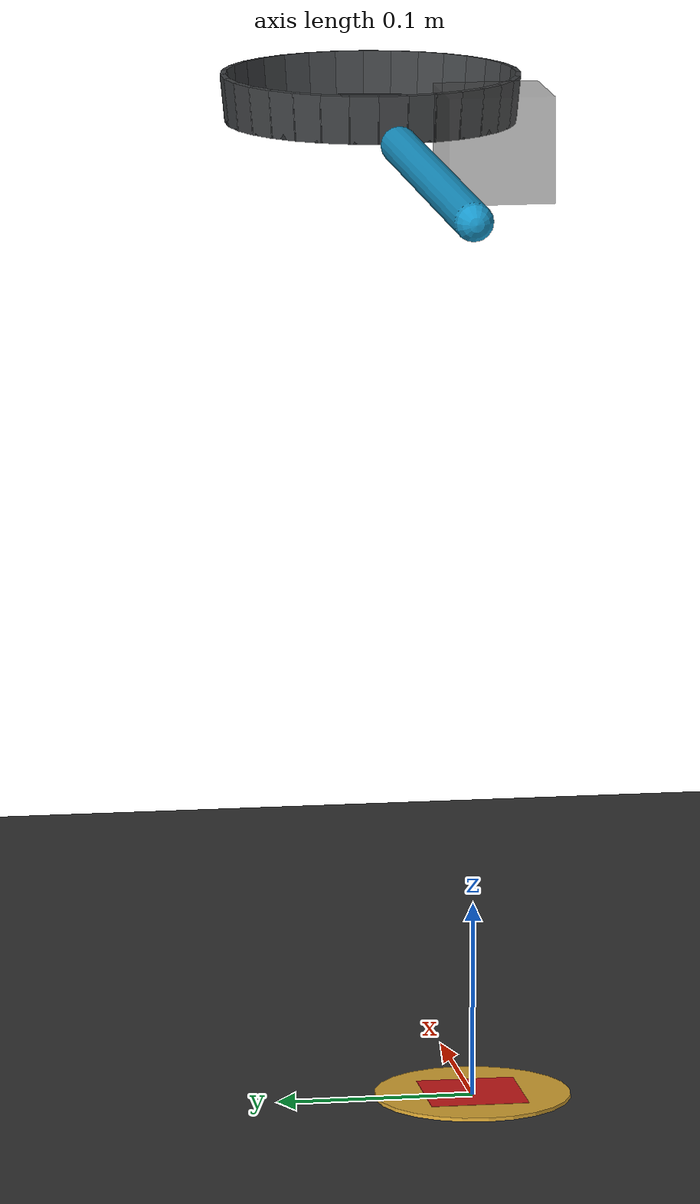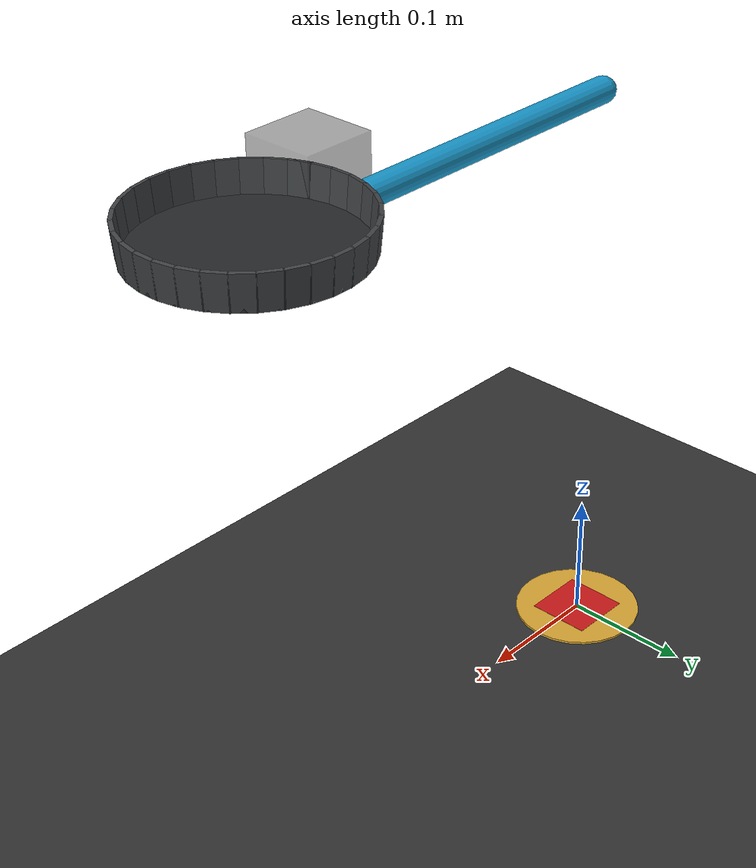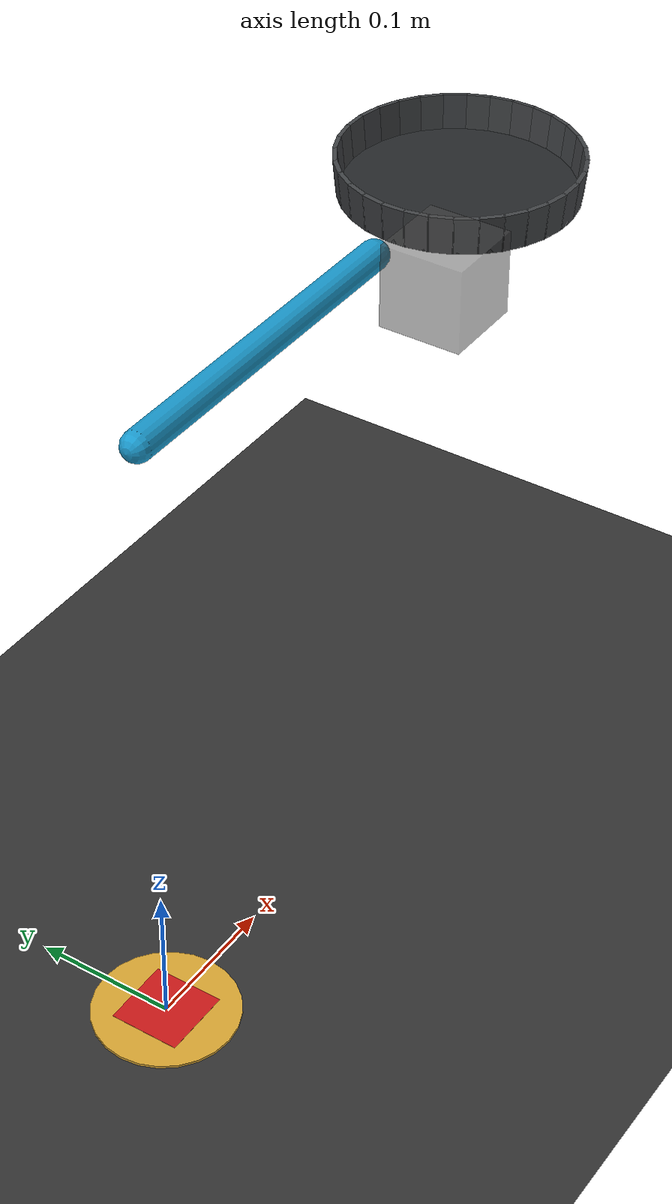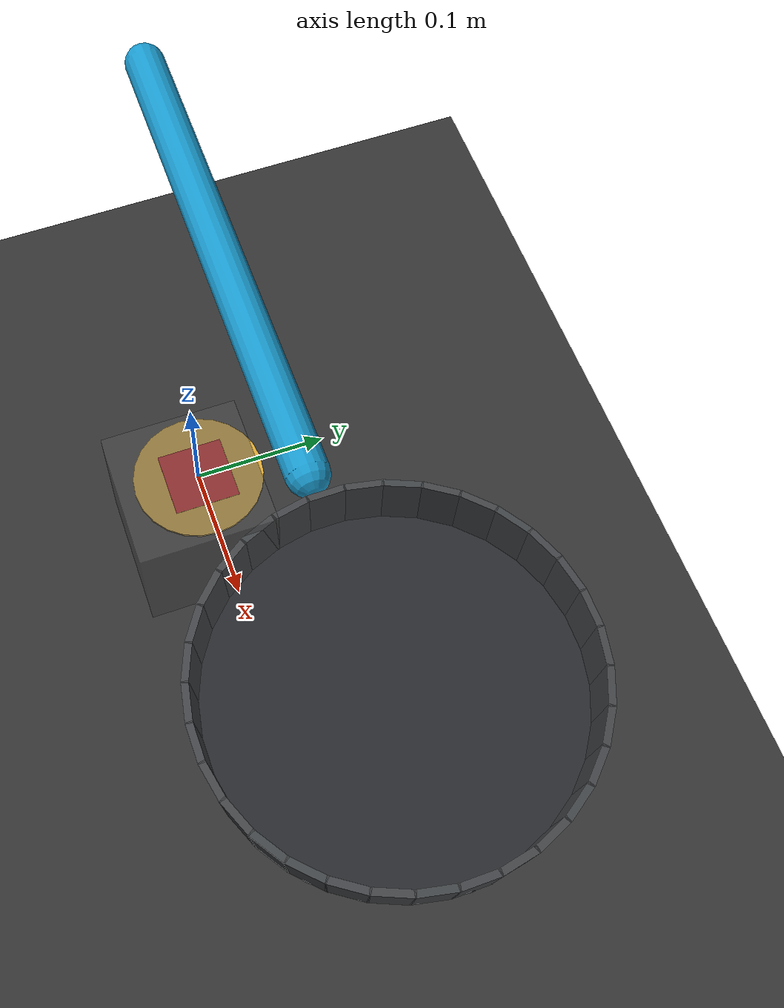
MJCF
<!-- Generated snapshot; source: training/baseten/settings.yaml -->
<mujoco model="two_joint_domain_randomized_v4">
  <compiler angle="radian" autolimits="true" />
  <option timestep="0.002" gravity="0 0 -9.81" integrator="implicitfast" iterations="50">
    <flag sleep="disable" />
  </option>
  <default>
    <geom friction="0.45 .005 .0001" condim="3" solref=".008 1" />
  </default>
  <worldbody>
    <geom name="ground" type="plane" size="2 2 .01" rgba=".2 .2 .2 1" />
    <light pos="0 -.5 1.5" />
    <camera name="side" pos=".5 -1 .65" xyaxes="1 .5 0 -.15 .3 1" />
    <body name="arm" pos="0 0 0.45">
      <joint name="shoulder" type="hinge" axis="0 -1 0" range="-0.2617993877991494 1.7453292519943295" damping=".015" armature=".00015" />
      <geom name="link" type="capsule" fromto="0 0 0 0.24 0 0" size=".01" mass="0.18" contype="0" conaffinity="0" rgba=".1 .6 .8 1" />
      <geom name="wrist_motor_mass" type="box" pos="0.24 -.05 0" size=".0282 .028 .0282" mass="0.7" contype="0" conaffinity="0" rgba=".3 .3 .3 .5" />
      <body name="pan" pos="0.24 0 0">
        <joint name="wrist" type="hinge" axis="0 -1 0" range="-2.6179938779914944 1.7453292519943295" damping=".005" armature=".00003" />
        <inertial pos="0.07411764705882354 0 -0.0015" mass="0.425" diaginertia="0.0005264166666666667 0.0013417107843137256 0.001839794117647059" />
        <geom name="pan_floor" type="cylinder" pos="0.1 0 -0.0015" size="0.078 0.0015" rgba=".15 .16 .17 1" />
        <geom name="rim_0" type="box" pos="0.1775 0.0 0.01" size="0.0015 0.008115691636630335 0.01304987562112089" quat="0.998758526924799 -0.0 0.0498137018801598 0.0" rgba=".25 .26 .27 1" />
        <geom name="rim_1" type="box" pos="0.17601085923125037 0.015119499956249938 0.01" size="0.0015 0.008115691636630335 0.01304987562112089" quat="0.9939492316291821 -0.0048825966075225205 0.04957383529013713 0.09789545468893326" rgba=".25 .26 .27 1" />
        <geom name="rim_2" type="box" pos="0.17160066376962474 0.029657966008294456 0.01" size="0.0015 0.008115691636630335 0.01304987562112089" quat="0.9795676618850564 -0.00971817114061579 0.04885654556645546 0.19484812263411294" rgba=".25 .26 .27 1" />
        <geom name="rim_3" type="box" pos="0.16443889495344727 0.04305669305901917 0.01" size="0.0015 0.008115691636630335 0.01304987562112089" quat="0.9557523200708236 -0.014460154373132191 0.04766874060126428 0.2899242966435075" rgba=".25 .26 .27 1" />
        <geom name="rim_4" type="box" pos="0.15480077554195742 0.054800775541957426 0.01" size="0.0015 0.008115691636630335 0.01304987562112089" quat="0.9227325609469448 -0.01906287841431088 0.04602185960569864 0.38220834118748304" rgba=".25 .26 .27 1" />
        <geom name="rim_5" type="box" pos="0.1430566930590192 0.06443889495344726 0.01" size="0.0015 0.008115691636630335 0.01304987562112089" quat="0.8808263828442194 -0.023482016515530394 0.04393176294402256 0.4708115104694906" rgba=".25 .26 .27 1" />
        <geom name="rim_6" type="box" pos="0.12965796600829446 0.07160066376962472 0.01" size="0.0015 0.008115691636630335 0.01304987562112089" quat="0.8304373651660238 -0.027675009961129374 0.04141857938965104 0.5548805075339253" rgba=".25 .26 .27 1" />
        <geom name="rim_7" type="box" pos="0.11511949995624995 0.07601085923125035 0.01" size="0.0015 0.008115691636630335 0.01304987562112089" quat="0.7720507816980383 -0.031601477932103335 0.03850651227405855 0.6336057019822681" rgba=".25 .26 .27 1" />
        <geom name="rim_8" type="box" pos="0.1 0.0775 0.01" size="0.0015 0.008115691636630335 0.01304987562112089" quat="0.7062289271564125 -0.03522360639546607 0.03522360639546607 0.7062289271564124" rgba=".25 .26 .27 1" />
        <geom name="rim_9" type="box" pos="0.08488050004375007 0.07601085923125035 0.01" size="0.0015 0.008115691636630335 0.01304987562112089" quat="0.6336057019822681 -0.03850651227405855 0.031601477932103335 0.7720507816980383" rgba=".25 .26 .27 1" />
        <geom name="rim_10" type="box" pos="0.07034203399170555 0.07160066376962472 0.01" size="0.0015 0.008115691636630335 0.01304987562112089" quat="0.5548805075339254 -0.04141857938965104 0.02767500996112938 0.8304373651660238" rgba=".25 .26 .27 1" />
        <geom name="rim_11" type="box" pos="0.056943306940980855 0.06443889495344726 0.01" size="0.0015 0.008115691636630335 0.01304987562112089" quat="0.47081151046949077 -0.04393176294402256 0.0234820165155304 0.8808263828442193" rgba=".25 .26 .27 1" />
        <geom name="rim_12" type="box" pos="0.04519922445804258 0.05480077554195743 0.01" size="0.0015 0.008115691636630335 0.01304987562112089" quat="0.3822083411874831 -0.04602185960569864 0.019062878414310883 0.9227325609469448" rgba=".25 .26 .27 1" />
        <geom name="rim_13" type="box" pos="0.03556110504655274 0.04305669305901917 0.01" size="0.0015 0.008115691636630335 0.01304987562112089" quat="0.2899242966435075 -0.04766874060126428 0.014460154373132191 0.9557523200708236" rgba=".25 .26 .27 1" />
        <geom name="rim_14" type="box" pos="0.028399336230375286 0.029657966008294467 0.01" size="0.0015 0.008115691636630335 0.01304987562112089" quat="0.19484812263411302 -0.04885654556645546 0.009718171140615793 0.9795676618850564" rgba=".25 .26 .27 1" />
        <geom name="rim_15" type="box" pos="0.023989140768749653 0.015119499956249968 0.01" size="0.0015 0.008115691636630335 0.01304987562112089" quat="0.09789545468893343 -0.049573835290137126 0.004882596607522528 0.993949231629182" rgba=".25 .26 .27 1" />
        <geom name="rim_16" type="box" pos="0.022500000000000006 9.491012693391988e-18 0.01" size="0.0015 0.008115691636630335 0.01304987562112089" quat="6.115632165597903e-17 -0.0498137018801598 3.0502095280609096e-18 0.998758526924799" rgba=".25 .26 .27 1" />
        <geom name="rim_17" type="box" pos="0.023989140768749653 -0.015119499956249947 0.01" size="0.0015 0.008115691636630335 0.01304987562112089" quat="-0.0978954546889333 -0.04957383529013713 -0.004882596607522522 0.9939492316291821" rgba=".25 .26 .27 1" />
        <geom name="rim_18" type="box" pos="0.02839933623037527 -0.02965796600829445 0.01" size="0.0015 0.008115691636630335 0.01304987562112089" quat="-0.19484812263411289 -0.04885654556645546 -0.009718171140615786 0.9795676618850564" rgba=".25 .26 .27 1" />
        <geom name="rim_19" type="box" pos="0.03556110504655273 -0.04305669305901915 0.01" size="0.0015 0.008115691636630335 0.01304987562112089" quat="-0.28992429664350733 -0.04766874060126429 -0.014460154373132183 0.9557523200708237" rgba=".25 .26 .27 1" />
        <geom name="rim_20" type="box" pos="0.04519922445804256 -0.054800775541957426 0.01" size="0.0015 0.008115691636630335 0.01304987562112089" quat="-0.382208341187483 -0.04602185960569864 -0.019062878414310876 0.9227325609469448" rgba=".25 .26 .27 1" />
        <geom name="rim_21" type="box" pos="0.056943306940980834 -0.06443889495344726 0.01" size="0.0015 0.008115691636630335 0.01304987562112089" quat="-0.47081151046949066 -0.04393176294402256 -0.023482016515530398 0.8808263828442194" rgba=".25 .26 .27 1" />
        <geom name="rim_22" type="box" pos="0.07034203399170551 -0.0716006637696247 0.01" size="0.0015 0.008115691636630335 0.01304987562112089" quat="-0.554880507533925 -0.041418579389651045 -0.027675009961129364 0.830437365166024" rgba=".25 .26 .27 1" />
        <geom name="rim_23" type="box" pos="0.08488050004375003 -0.07601085923125035 0.01" size="0.0015 0.008115691636630335 0.01304987562112089" quat="-0.633605701982268 -0.03850651227405856 -0.031601477932103335 0.7720507816980384" rgba=".25 .26 .27 1" />
        <geom name="rim_24" type="box" pos="0.09999999999999999 -0.0775 0.01" size="0.0015 0.008115691636630335 0.01304987562112089" quat="-0.7062289271564124 -0.03522360639546607 -0.03522360639546607 0.7062289271564125" rgba=".25 .26 .27 1" />
        <geom name="rim_25" type="box" pos="0.11511949995624995 -0.07601085923125035 0.01" size="0.0015 0.008115691636630335 0.01304987562112089" quat="-0.7720507816980383 -0.031601477932103335 -0.03850651227405855 0.6336057019822681" rgba=".25 .26 .27 1" />
        <geom name="rim_26" type="box" pos="0.1296579660082945 -0.07160066376962472 0.01" size="0.0015 0.008115691636630335 0.01304987562112089" quat="-0.830437365166024 -0.027675009961129374 -0.041418579389651045 0.5548805075339253" rgba=".25 .26 .27 1" />
        <geom name="rim_27" type="box" pos="0.14305669305901914 -0.06443889495344728 0.01" size="0.0015 0.008115691636630335 0.01304987562112089" quat="-0.8808263828442193 -0.023482016515530404 -0.04393176294402256 0.4708115104694908" rgba=".25 .26 .27 1" />
        <geom name="rim_28" type="box" pos="0.15480077554195742 -0.05480077554195745 0.01" size="0.0015 0.008115691636630335 0.01304987562112089" quat="-0.9227325609469448 -0.019062878414310886 -0.04602185960569864 0.38220834118748315" rgba=".25 .26 .27 1" />
        <geom name="rim_29" type="box" pos="0.16443889495344727 -0.04305669305901917 0.01" size="0.0015 0.008115691636630335 0.01304987562112089" quat="-0.9557523200708236 -0.014460154373132195 -0.04766874060126428 0.28992429664350755" rgba=".25 .26 .27 1" />
        <geom name="rim_30" type="box" pos="0.1716006637696247 -0.029657966008294505 0.01" size="0.0015 0.008115691636630335 0.01304987562112089" quat="-0.9795676618850564 -0.009718171140615807 -0.04885654556645546 0.1948481226341133" rgba=".25 .26 .27 1" />
        <geom name="rim_31" type="box" pos="0.17601085923125037 -0.015119499956249975 0.01" size="0.0015 0.008115691636630335 0.01304987562112089" quat="-0.993949231629182 -0.004882596607522531 -0.049573835290137126 0.09789545468893349" rgba=".25 .26 .27 1" />
      </body>
    </body>
    <body name="pancake">
      <freejoint name="pancake_free" />
      <geom name="pancake" type="cylinder" size="0.05 0.00125" mass="0.025" rgba=".85 .65 .2 1" />
      <geom name="top_marker" type="box" pos="0 0 0.00135" size="0.025 0.025 .0001" mass="0" contype="0" conaffinity="0" rgba=".8 .1 .1 1" />
    </body>
  </worldbody>
  <actuator>
    <motor name="shoulder" joint="shoulder" gear="1" ctrllimited="true" ctrlrange="-3.0 3.0" />
    <motor name="wrist" joint="wrist" gear="1" ctrllimited="true" ctrlrange="-1.2356379 1.2356379" />
  </actuator>
</mujoco>
